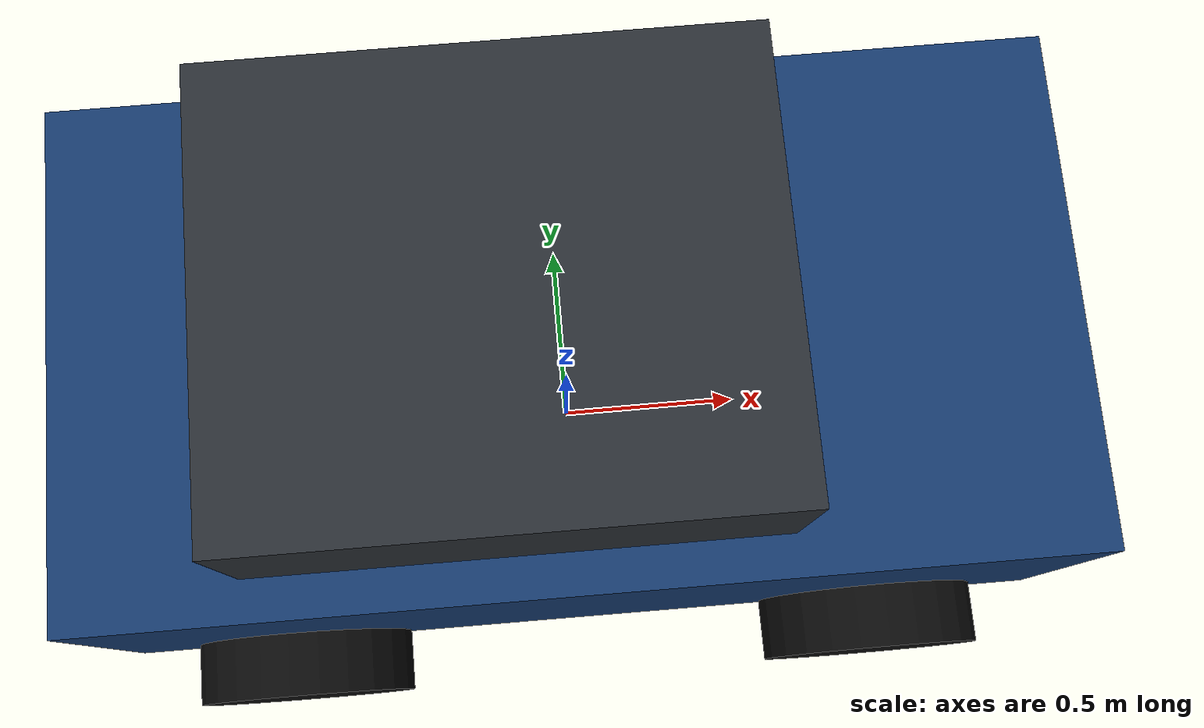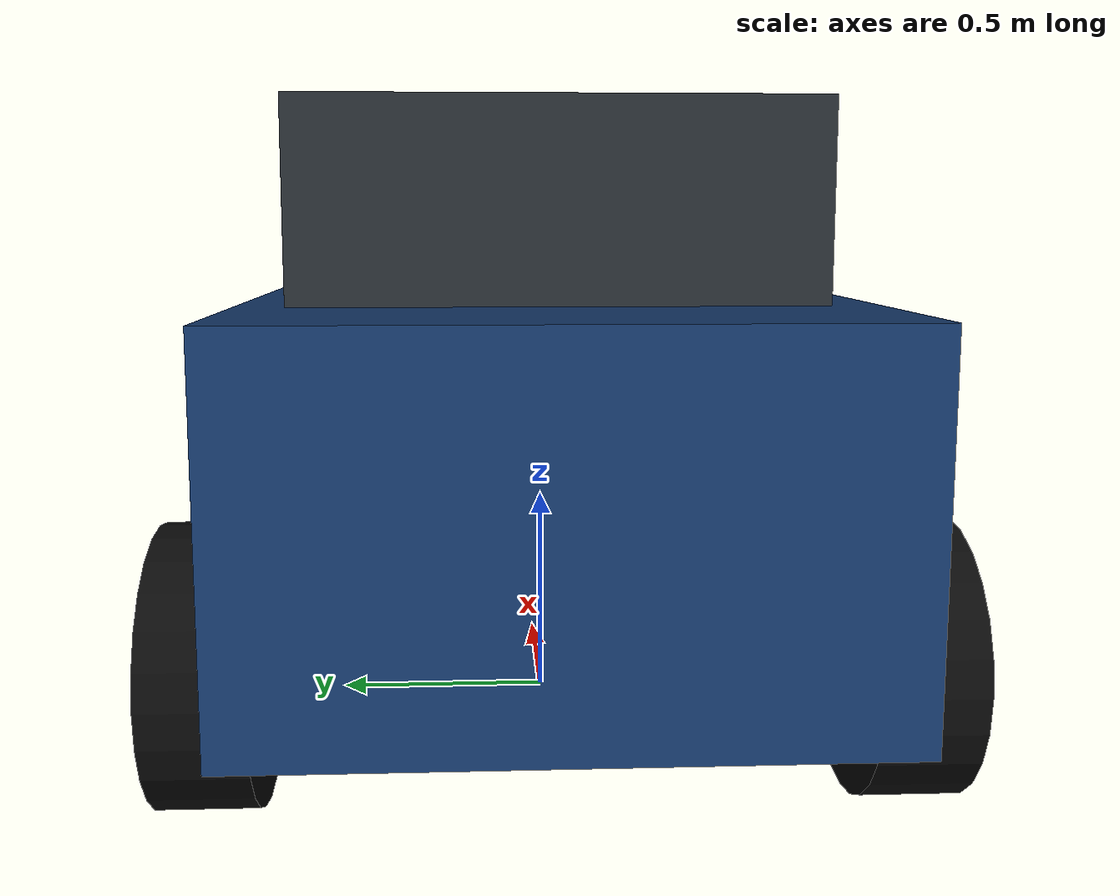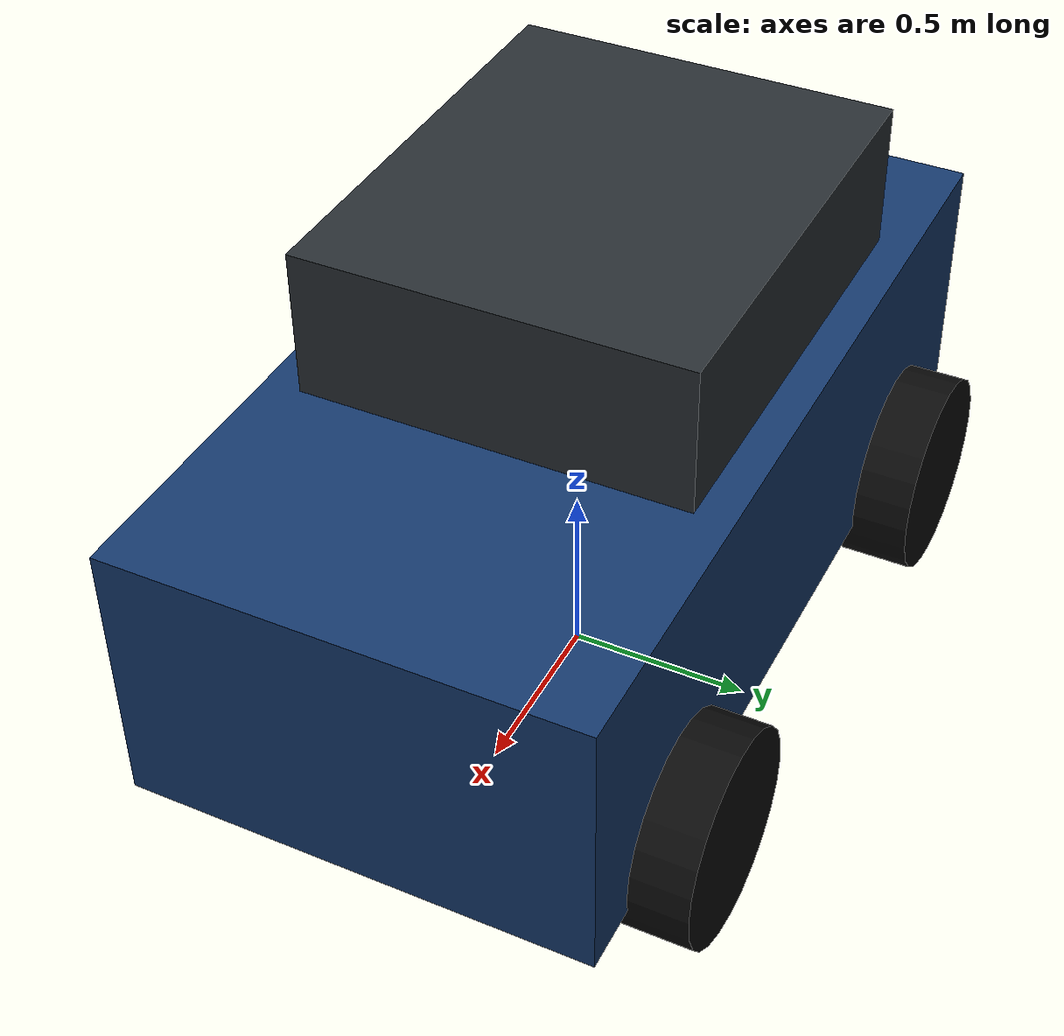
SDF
<?xml version="1.0" ?>
<sdf version="1.5">
    <model name="simple_suv">
        <static>true</static>

        <link name="body">
            <pose>0 0 0.65 0 0 0</pose>
            <collision name="body_collision">
                <geometry>
                    <box>
                        <size>2.4 1.25 0.75</size>
                    </box>
                </geometry>
            </collision>
            <visual name="body_visual">
                <geometry>
                    <box>
                        <size>2.4 1.25 0.75</size>
                    </box>
                </geometry>
                <material>
                    <ambient>0.05 0.12 0.22 1</ambient>
                    <diffuse>0.08 0.22 0.42 1</diffuse>
                    <specular>0.18 0.20 0.22 1</specular>
                </material>
            </visual>
        </link>

        <link name="cabin">
            <pose>-0.15 0 1.15 0 0 0</pose>
            <collision name="cabin_collision">
                <geometry>
                    <box>
                        <size>1.25 1.05 0.55</size>
                    </box>
                </geometry>
            </collision>
            <visual name="cabin_visual">
                <geometry>
                    <box>
                        <size>1.25 1.05 0.55</size>
                    </box>
                </geometry>
                <material>
                    <ambient>0.08 0.09 0.10 1</ambient>
                    <diffuse>0.16 0.18 0.20 1</diffuse>
                    <specular>0.30 0.32 0.34 1</specular>
                </material>
            </visual>
        </link>

        <link name="wheels">
            <pose>0 0 0 0 0 0</pose>
            <visual name="front_left_wheel">
                <pose>0.75 0.68 0.32 1.5708 0 0</pose>
                <geometry><cylinder><radius>0.28</radius><length>0.20</length></cylinder></geometry>
                <material><ambient>0.02 0.02 0.02 1</ambient><diffuse>0.04 0.04 0.04 1</diffuse></material>
            </visual>
            <visual name="front_right_wheel">
                <pose>0.75 -0.68 0.32 1.5708 0 0</pose>
                <geometry><cylinder><radius>0.28</radius><length>0.20</length></cylinder></geometry>
                <material><ambient>0.02 0.02 0.02 1</ambient><diffuse>0.04 0.04 0.04 1</diffuse></material>
            </visual>
            <visual name="rear_left_wheel">
                <pose>-0.75 0.68 0.32 1.5708 0 0</pose>
                <geometry><cylinder><radius>0.28</radius><length>0.20</length></cylinder></geometry>
                <material><ambient>0.02 0.02 0.02 1</ambient><diffuse>0.04 0.04 0.04 1</diffuse></material>
            </visual>
            <visual name="rear_right_wheel">
                <pose>-0.75 -0.68 0.32 1.5708 0 0</pose>
                <geometry><cylinder><radius>0.28</radius><length>0.20</length></cylinder></geometry>
                <material><ambient>0.02 0.02 0.02 1</ambient><diffuse>0.04 0.04 0.04 1</diffuse></material>
            </visual>
        </link>
    </model>
</sdf>
